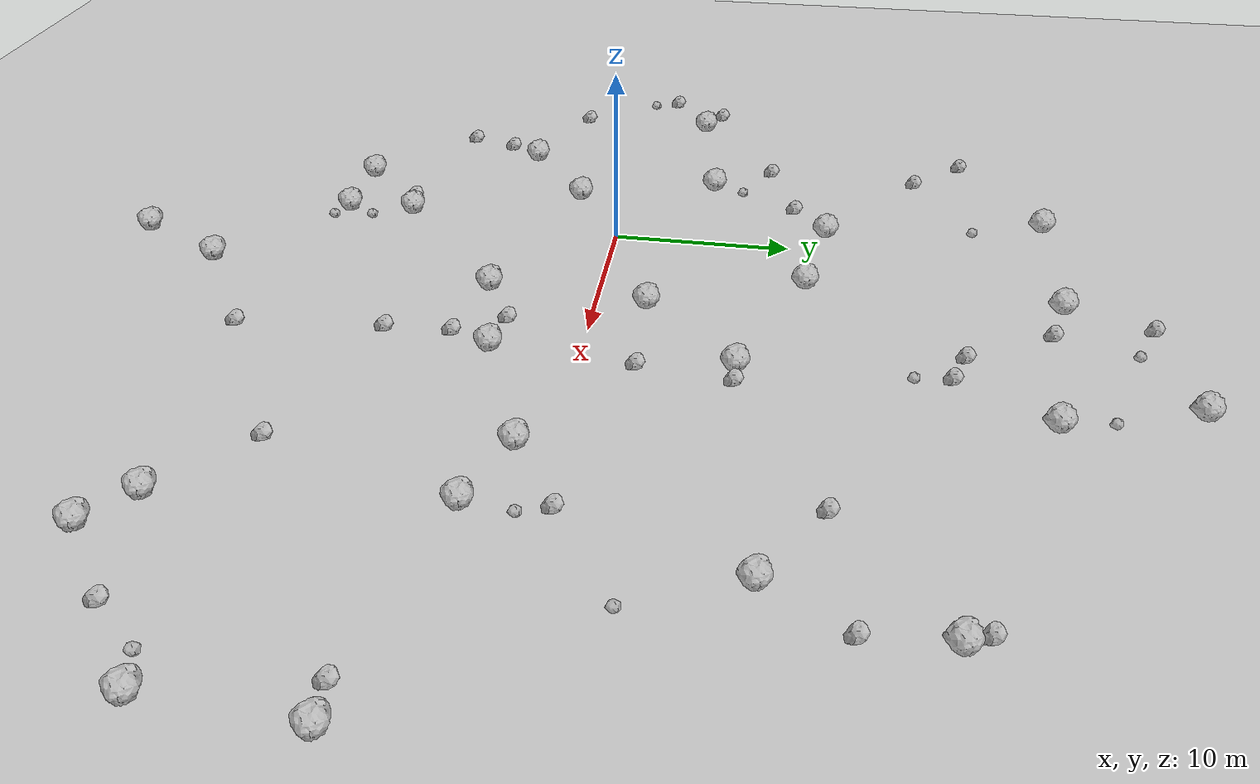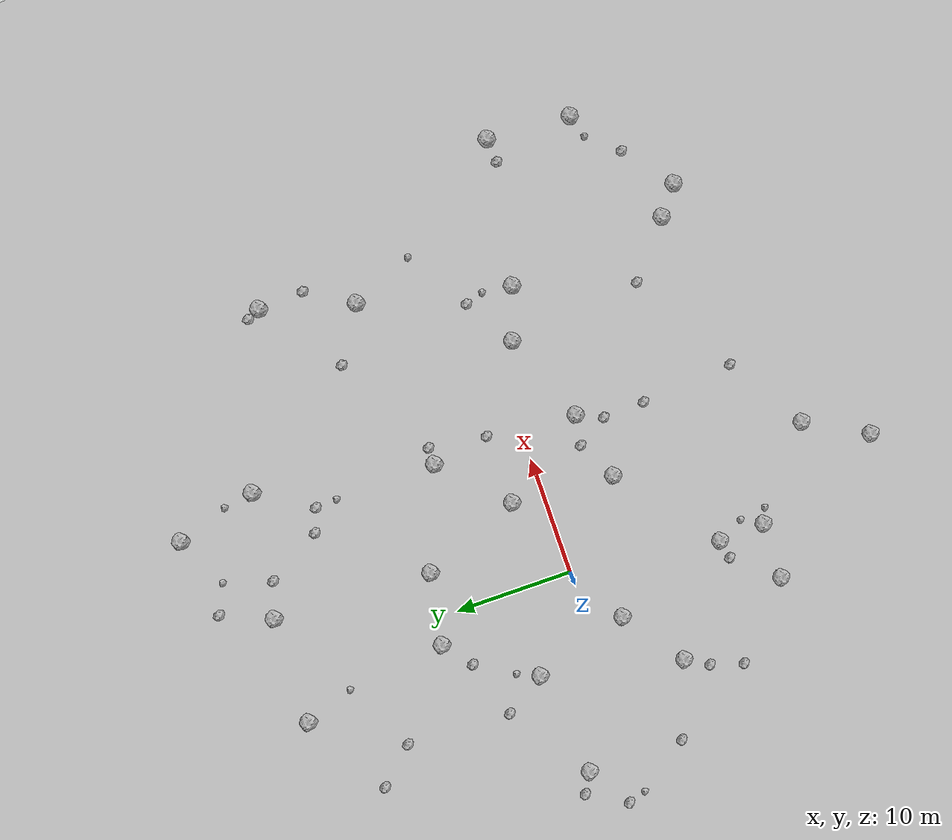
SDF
<sdf version="1.6">
 <world name="default">
  <include><uri>model://custom_ground</uri></include>
  <include><uri>model://sun</uri></include>
  <model name="rock1_0_0">
   <include><uri>model://rock1</uri><pose>4.535462710996654 24.58052984383427 0.5 0 0 0</pose></include>
  </model>
  <model name="rock1_0_1">
   <include><uri>model://rock1</uri><pose>7.167043263613291 2.67654792124506 0.5 0 0 0</pose></include>
  </model>
  <model name="rock1_0_2">
   <include><uri>model://rock1</uri><pose>12.323201115176857 7.748378981056021 0.5 0 0 0</pose></include>
  </model>
  <model name="rock1_0_3">
   <include><uri>model://rock1</uri><pose>13.173204236284704 29.8120388910953 0.5 0 0 0</pose></include>
  </model>
  <model name="rock1_0_4">
   <include><uri>model://rock1</uri><pose>-7.234948055935044 5.186945250025815 0.5 0 0 0</pose></include>
  </model>
  <model name="rock1_0_5">
   <include><uri>model://rock1</uri><pose>-4.5460510623439365 24.69995138309593 0.5 0 0 0</pose></include>
  </model>
  <model name="rock1_0_6">
   <include><uri>model://rock1</uri><pose>3.8799974532422183 11.01363396571464 0.5 0 0 0</pose></include>
  </model>
  <model name="rock1_0_7">
   <include><uri>model://rock1</uri><pose>-1.3873969861906517 -16.528265217039134 0.5 0 0 0</pose></include>
  </model>
  <model name="rock1_0_8">
   <include><uri>model://rock1</uri><pose>12.338556543773521 -4.726948138950359 0.5 0 0 0</pose></include>
  </model>
  <model name="rock1_0_9">
   <include><uri>model://rock1</uri><pose>-9.888488194988769 -6.58462197014704 0.5 0 0 0</pose></include>
  </model>
  <model name="rock1_0_10">
   <include><uri>model://rock1</uri><pose>27.861423046021223 -18.74561402675891 0.5 0 0 0</pose></include>
  </model>
  <model name="rock1_0_11">
   <include><uri>model://rock1</uri><pose>-4.837437570937862 -2.88808569044766 0.5 0 0 0</pose></include>
  </model>
  <model name="rock1_0_12">
   <include><uri>model://rock1</uri><pose>15.054179648028601 22.87089151948505 0.5 0 0 0</pose></include>
  </model>
  <model name="rock1_0_13">
   <include><uri>model://rock1</uri><pose>2.7740833386331722 -27.41303245514971 0.5 0 0 0</pose></include>
  </model>
  <model name="rock1_0_14">
   <include><uri>model://rock1</uri><pose>-6.086045032021865 -16.458035146851437 0.5 0 0 0</pose></include>
  </model>
  <model name="rock1_0_15">
   <include><uri>model://rock1</uri><pose>-16.112398729155235 3.9093933100914455 0.5 0 0 0</pose></include>
  </model>
  <model name="rock1_0_16">
   <include><uri>model://rock1</uri><pose>5.588375104308373 -22.305449005688644 0.5 0 0 0</pose></include>
  </model>
  <model name="rock1_0_17">
   <include><uri>model://rock1</uri><pose>36.00958301725695 -12.418429209285623 0.5 0 0 0</pose></include>
  </model>
  <model name="rock1_0_18">
   <include><uri>model://rock1</uri><pose>19.896691623579137 -1.749743231738453 0.5 0 0 0</pose></include>
  </model>
  <model name="rock1_0_19">
   <include><uri>model://rock1</uri><pose>36.47203944235663 -5.26925511424167 0.5 0 0 0</pose></include>
  </model>
  <model name="rock1_0_20">
   <include><uri>model://rock1</uri><pose>27.139115976736043 9.484396067048685 0.5 0 0 0</pose></include>
  </model>
  <model name="rock1_0_21">
   <include><uri>model://rock1</uri><pose>24.243678175671768 -3.2538645652865057 0.5 0 0 0</pose></include>
  </model>
  <model name="rock1_0_22">
   <include><uri>model://rock1</uri><pose>29.339767103215543 17.324515482444852 0.5 0 0 0</pose></include>
  </model>
  <model name="rock1_0_23">
   <include><uri>model://rock1</uri><pose>-1.5313394568778023 -12.64860217564135 0.5 0 0 0</pose></include>
  </model>
  <model name="rock1_0_24">
   <include><uri>model://rock1</uri><pose>6.522918308286478 -6.02322666028266 0.5 0 0 0</pose></include>
  </model>
  <model name="rock1_0_25">
   <include><uri>model://rock1</uri><pose>25.549864761352374 -16.901671015106636 0.5 0 0 0</pose></include>
  </model>
  <model name="rock1_0_26">
   <include><uri>model://rock1</uri><pose>-2.1109864241374297 12.08637610167932 0.5 0 0 0</pose></include>
  </model>
  <model name="rock2_0_0">
   <include><uri>model://rock2</uri><pose>28.822303843108784 18.466520301829647 0.3 0 0 0</pose></include>
  </model>
  <model name="rock2_0_1">
   <include><uri>model://rock2</uri><pose>-11.09108862066556 -8.479036978214317 0.3 0 0 0</pose></include>
  </model>
  <model name="rock2_0_2">
   <include><uri>model://rock2</uri><pose>-16.247130234335934 -4.19816828605169 0.3 0 0 0</pose></include>
  </model>
  <model name="rock2_0_3">
   <include><uri>model://rock2</uri><pose>-9.098201783189992 17.52393279860882 0.3 0 0 0</pose></include>
  </model>
  <model name="rock2_0_4">
   <include><uri>model://rock2</uri><pose>12.103162738119686 18.312910396320447 0.3 0 0 0</pose></include>
  </model>
  <model name="rock2_0_5">
   <include><uri>model://rock2</uri><pose>-11.859741004472372 20.498666426879836 0.3 0 0 0</pose></include>
  </model>
  <model name="rock2_0_6">
   <include><uri>model://rock2</uri><pose>6.2596972194040035 28.897398847142313 0.3 0 0 0</pose></include>
  </model>
  <model name="rock2_0_7">
   <include><uri>model://rock2</uri><pose>34.43171985331265 -5.437038438914659 0.3 0 0 0</pose></include>
  </model>
  <model name="rock2_0_8">
   <include><uri>model://rock2</uri><pose>9.761649655377806 -4.296360464234009 0.3 0 0 0</pose></include>
  </model>
  <model name="rock2_0_9">
   <include><uri>model://rock2</uri><pose>-19.768848925853668 1.641319644553331 0.3 0 0 0</pose></include>
  </model>
  <model name="rock2_0_10">
   <include><uri>model://rock2</uri><pose>24.04336416604405 0.834323159023409 0.3 0 0 0</pose></include>
  </model>
  <model name="rock2_0_11">
   <include><uri>model://rock2</uri><pose>-9.46205070282512 8.648686313723445 0.3 0 0 0</pose></include>
  </model>
  <model name="rock2_0_12">
   <include><uri>model://rock2</uri><pose>-4.578779033132957 10.223822723010173 0.3 0 0 0</pose></include>
  </model>
  <model name="rock2_0_13">
   <include><uri>model://rock2</uri><pose>13.046047770489622 2.882050633053545 0.3 0 0 0</pose></include>
  </model>
  <model name="rock2_0_14">
   <include><uri>model://rock2</uri><pose>10.128392296377601 19.085384774464288 0.3 0 0 0</pose></include>
  </model>
  <model name="rock2_0_15">
   <include><uri>model://rock2</uri><pose>-3.195635286352868 -12.968149594630532 0.3 0 0 0</pose></include>
  </model>
  <model name="rock2_0_16">
   <include><uri>model://rock2</uri><pose>7.478099168136453 23.687152498719804 0.3 0 0 0</pose></include>
  </model>
  <model name="rock2_0_17">
   <include><uri>model://rock2</uri><pose>13.727863444748287 7.777075097876718 0.3 0 0 0</pose></include>
  </model>
  <model name="rock2_0_18">
   <include><uri>model://rock2</uri><pose>21.087885446194086 -13.18512010340309 0.3 0 0 0</pose></include>
  </model>
  <model name="rock2_0_19">
   <include><uri>model://rock2</uri><pose>29.517835672265306 13.424001356253406 0.3 0 0 0</pose></include>
  </model>
  <model name="rock2_0_20">
   <include><uri>model://rock2</uri><pose>-11.915754037141657 -11.204487431772723 0.3 0 0 0</pose></include>
  </model>
  <model name="rock2_0_21">
   <include><uri>model://rock2</uri><pose>11.460415166873759 -10.434016471937497 0.3 0 0 0</pose></include>
  </model>
  <model name="rock2_0_22">
   <include><uri>model://rock2</uri><pose>11.329032735116769 -6.890145301183765 0.3 0 0 0</pose></include>
  </model>
  <model name="rock2_0_23">
   <include><uri>model://rock2</uri><pose>-17.88292124176606 4.902774378008253 0.3 0 0 0</pose></include>
  </model>
  <model name="rock2_0_24">
   <include><uri>model://rock2</uri><pose>31.87670030262936 -15.574185514927596 0.3 0 0 0</pose></include>
  </model>
  <model name="rock2_0_25">
   <include><uri>model://rock2</uri><pose>12.057693635531315 -18.277957424013643 0.3 0 0 0</pose></include>
  </model>
  <model name="rock2_0_26">
   <include><uri>model://rock2</uri><pose>22.638097701037438 12.345569281947249 0.3 0 0 0</pose></include>
  </model>
  <model name="rock3_0_0">
   <include><uri>model://rock3</uri><pose>12.183898193080289 16.432527172668735 0.2 0 0 0</pose></include>
  </model>
  <model name="rock3_0_1">
   <include><uri>model://rock3</uri><pose>-6.548904109003399 7.007257632256653 0.2 0 0 0</pose></include>
  </model>
  <model name="rock3_0_2">
   <include><uri>model://rock3</uri><pose>-3.236464322390624 20.579423714968044 0.2 0 0 0</pose></include>
  </model>
  <model name="rock3_0_3">
   <include><uri>model://rock3</uri><pose>8.702711100760158 27.711930925179267 0.2 0 0 0</pose></include>
  </model>
  <model name="rock3_0_4">
   <include><uri>model://rock3</uri><pose>24.497509501330626 -0.7219137848627923 0.2 0 0 0</pose></include>
  </model>
  <model name="rock3_0_5">
   <include><uri>model://rock3</uri><pose>-0.5323089631134188 -14.906048685434047 0.2 0 0 0</pose></include>
  </model>
  <model name="rock3_0_6">
   <include><uri>model://rock3</uri><pose>34.01958861326206 -13.080481152754903 0.2 0 0 0</pose></include>
  </model>
  <model name="rock3_0_7">
   <include><uri>model://rock3</uri><pose>-19.343831572368003 0.09322492203993704 0.2 0 0 0</pose></include>
  </model>
  <model name="rock3_0_8">
   <include><uri>model://rock3</uri><pose>29.309582355458744 4.1801932678488285 0.2 0 0 0</pose></include>
  </model>
  <model name="rock3_0_9">
   <include><uri>model://rock3</uri><pose>14.570735011940542 25.515626639773103 0.2 0 0 0</pose></include>
  </model>
  <model name="rock3_0_10">
   <include><uri>model://rock3</uri><pose>-0.2220269306097009 -17.154459730008284 0.2 0 0 0</pose></include>
  </model>
 </world>
</sdf>
